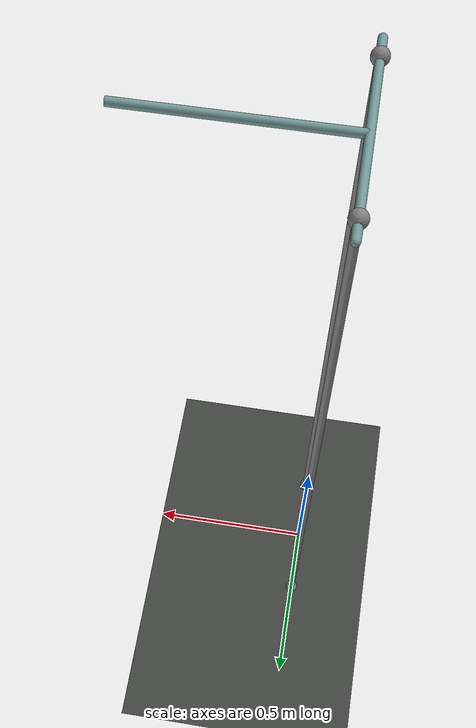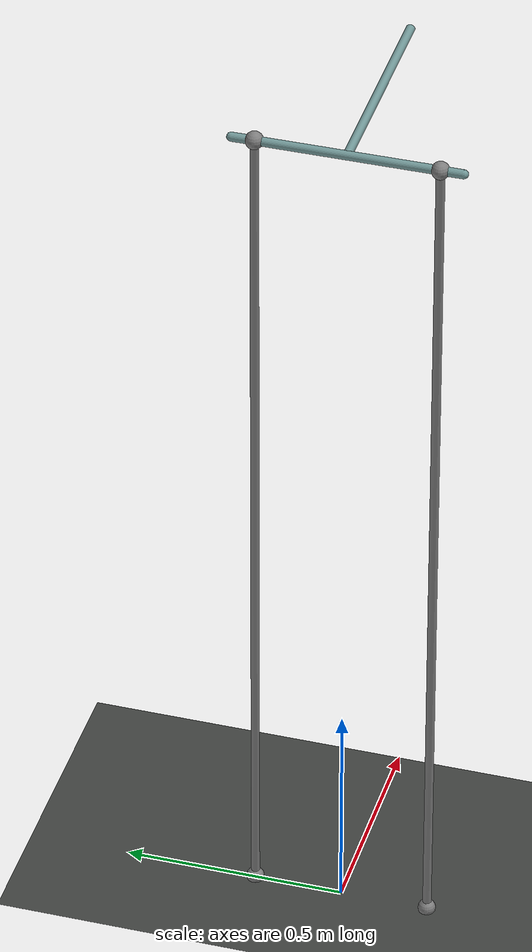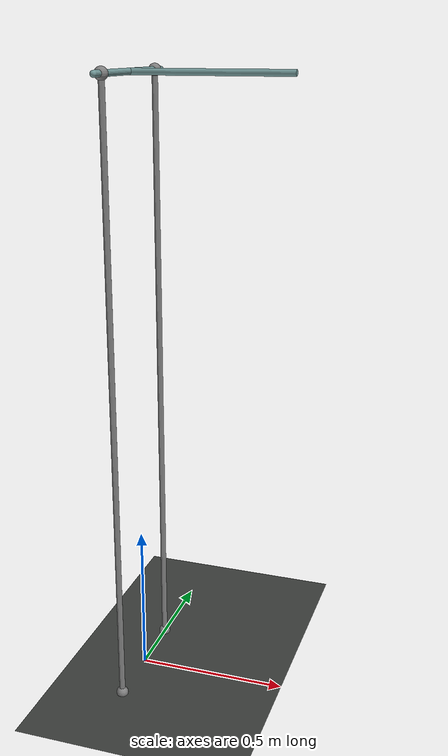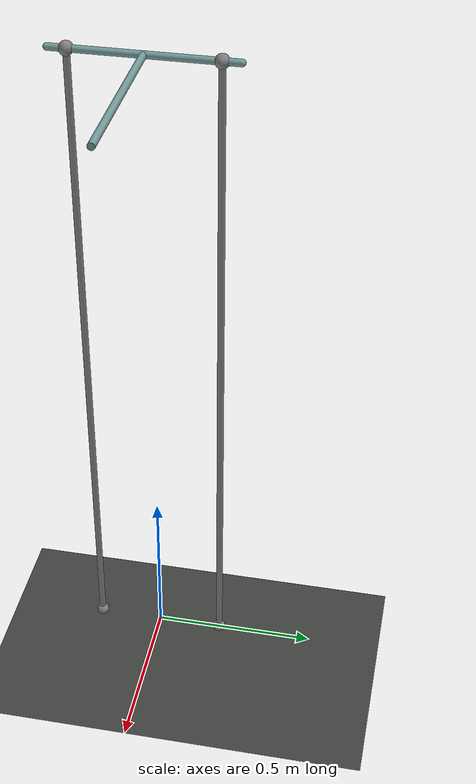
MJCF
<mujoco model="acrobot">
	<compiler angle="radian"/>

	<option timestep="0.01" gravity="0 0 -9.81" integrator="RK4"/>

	<default>
		<geom rgba="0.45 0.6 0.6 1"/>
		<site type="sphere" size="0.02"/>
	</default>
	<worldbody>

		<light directional="true" cutoff="4" exponent="20" diffuse="1 1 1" specular="0 0 0" pos=".9 .3 2.5" dir="-.9 -.3 -2.5"/>
		<camera name="cam1" pos="-5.161 -5.989 6.752" xyaxes="0.758 -0.653 -0.000 0.424 0.492 0.760"/>

		<!-- ======= Ground ======= -->
		<geom name="ground" type="plane" pos="0 0 0" size="0.5 1 2" rgba=" .25 .26 .25 1" contype="0" conaffinity="0"/>
		<site name="rFix" pos="0 -.2 .005"/>
		<site name="lFix" pos="0 .2 .005"/>

		<!-- ======= Beam ======= -->
		<body name="rod1body" pos="0 0 2.0"> <!-- Changed height to 1.0 (half of 2m rod) -->
			<geom name="rod1geom" type="cylinder" pos="0.25 0 0" size=".01 0.25" mass="2" euler="0 1.57 0"/> <!-- Adjusted rod height to 2m -->
			<geom pos="0 0 0" type="capsule" size=".01 0.25" euler="1.57 0 0"/> <!-- pivot of first link -->
			<joint name="passive" pos="0 0 0.0" axis="0 -1 0" limited="false"/>
			<site name="rBeam" pos="0 -.2 0"/>
			<site name="lBeam" pos="0 .2 0"/>
			<body name="rod2body">
				<geom name="rod2geom" type="cylinder" pos="0.25 0 0" size=".01 0.25" mass="1" euler="0 1.57 0" rgba=" .75 .76 .75 1"/> <!-- Adjusted pendulum link length to 0.5m -->
				<joint name="active" pos="0.5 0 0" axis="0 -1 0" limited="false"/>
			</body>
		</body>
	</worldbody>

	<tendon>
		<spatial name="lThread" width="0.01">
			<site site="lBeam"/>
			<site site="lFix"/>
		</spatial>

		<spatial name="rThread" width="0.01">
			<site site="rBeam"/>
			<site site="rFix"/>
		</spatial>

	</tendon>

	<actuator>
		<motor joint='active' name='motor' forcelimited="false"/>
	</actuator>

</mujoco>
